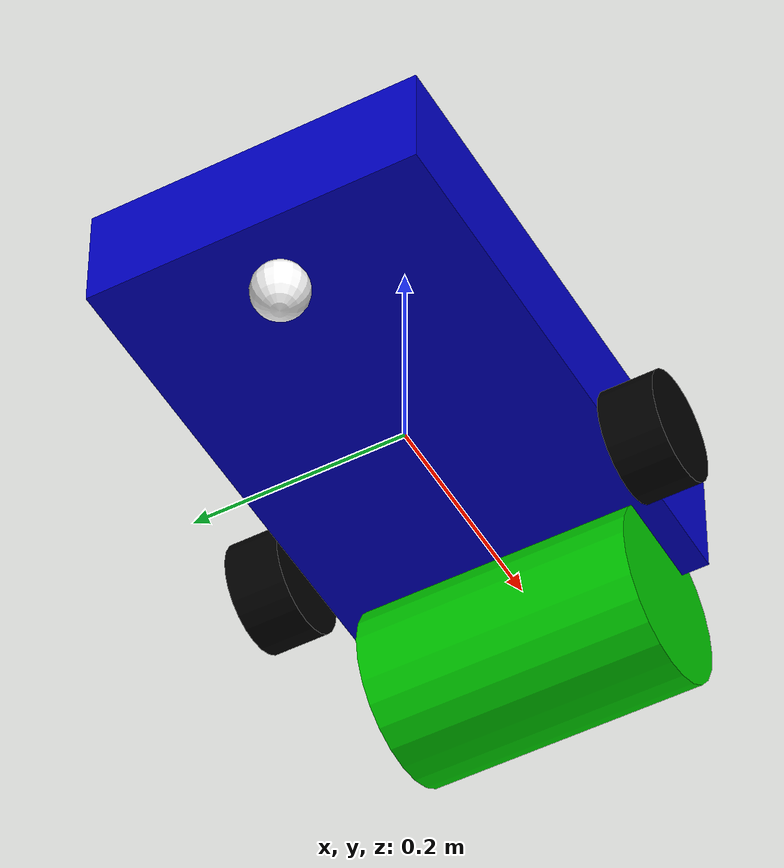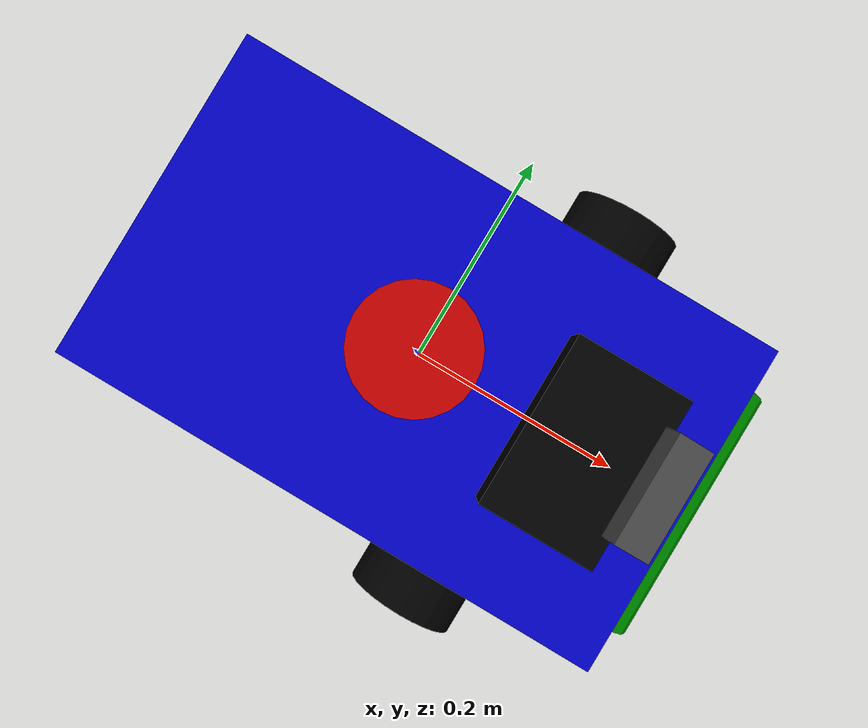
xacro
<?xml version="1.0"?>
<robot name="cleaning_robot" xmlns:xacro="http://www.ros.org/wiki/xacro">

  <!-- 定义一些常用的颜色 -->
  <material name="blue">
    <color rgba="0.0 0.0 0.8 1.0"/>
  </material>

  <material name="red">
    <color rgba="0.8 0.0 0.0 1.0"/>
  </material>

  <material name="green">
    <color rgba="0.0 0.8 0.0 1.0"/>
  </material>

  <material name="black">
    <color rgba="0.0 0.0 0.0 1.0"/>
  </material>

  <material name="white">
    <color rgba="1.0 1.0 1.0 1.0"/>
  </material>

  <!-- 底盘链接 -->
  <link name="base_link">
    <visual>
      <origin xyz="0 0 0.05" rpy="0 0 0"/>
      <geometry>
        <box size="0.5 0.3 0.1"/>
      </geometry>
      <material name="blue"/>
    </visual>
    <collision>
      <origin xyz="0 0 0.05" rpy="0 0 0"/>
      <geometry>
        <box size="0.5 0.3 0.1"/>
      </geometry>
    </collision>
    <inertial>
      <origin xyz="0 0 0.05" rpy="0 0 0"/>
      <mass value="10.0"/>
      <inertia ixx="1.0" ixy="0.0" ixz="0.0" iyy="1.0" iyz="0.0" izz="1.0"/>
    </inertial>
  </link>

  <!-- 左轮 -->
  <link name="left_wheel">
    <visual>
      <origin xyz="0 0 0" rpy="1.5708 0 0"/>
      <geometry>
        <cylinder radius="0.05" length="0.05"/>
      </geometry>
      <material name="black"/>
    </visual>
    <collision>
      <origin xyz="0 0 0" rpy="1.5708 0 0"/>
      <geometry>
        <cylinder radius="0.05" length="0.05"/>
      </geometry>
    </collision>
    <inertial>
      <origin xyz="0 0 0" rpy="1.5708 0 0"/>
      <mass value="1.0"/>
      <inertia ixx="0.1" ixy="0.0" ixz="0.0" iyy="0.1" iyz="0.0" izz="0.1"/>
    </inertial>
  </link>

  <joint name="left_wheel_joint" type="continuous">
    <parent link="base_link"/>
    <child link="left_wheel"/>
    <origin xyz="0.1 0.175 0" rpy="0 0 0"/>
    <axis xyz="0 1 0"/>
  </joint>

  <!-- 右轮 -->
  <link name="right_wheel">
    <visual>
      <origin xyz="0 0 0" rpy="1.5708 0 0"/>
      <geometry>
        <cylinder radius="0.05" length="0.05"/>
      </geometry>
      <material name="black"/>
    </visual>
    <collision>
      <origin xyz="0 0 0" rpy="1.5708 0 0"/>
      <geometry>
        <cylinder radius="0.05" length="0.05"/>
      </geometry>
    </collision>
    <inertial>
      <origin xyz="0 0 0" rpy="1.5708 0 0"/>
      <mass value="1.0"/>
      <inertia ixx="0.1" ixy="0.0" ixz="0.0" iyy="0.1" iyz="0.0" izz="0.1"/>
    </inertial>
  </link>

  <joint name="right_wheel_joint" type="continuous">
    <parent link="base_link"/>
    <child link="right_wheel"/>
    <origin xyz="0.1 -0.175 0" rpy="0 0 0"/>
    <axis xyz="0 1 0"/>
  </joint>

  <!-- 前支撑轮 -->
  <link name="front_caster">
    <visual>
      <origin xyz="0 0 0" rpy="0 0 0"/>
      <geometry>
        <sphere radius="0.025"/>
      </geometry>
      <material name="white"/>
    </visual>
    <collision>
      <origin xyz="0 0 0" rpy="0 0 0"/>
      <geometry>
        <sphere radius="0.025"/>
      </geometry>
    </collision>
    <inertial>
      <origin xyz="0 0 0" rpy="0 0 0"/>
      <mass value="0.5"/>
      <inertia ixx="0.05" ixy="0.0" ixz="0.0" iyy="0.05" iyz="0.0" izz="0.05"/>
    </inertial>
  </link>

  <joint name="front_caster_joint" type="fixed">
    <parent link="base_link"/>
    <child link="front_caster"/>
    <origin xyz="0.2 0 -0.025" rpy="0 0 0"/>
  </joint>

  <!-- 后支撑轮 -->
  <link name="rear_caster">
    <visual>
      <origin xyz="0 0 0" rpy="0 0 0"/>
      <geometry>
        <sphere radius="0.025"/>
      </geometry>
      <material name="white"/>
    </visual>
    <collision>
      <origin xyz="0 0 0" rpy="0 0 0"/>
      <geometry>
        <sphere radius="0.025"/>
      </geometry>
    </collision>
    <inertial>
      <origin xyz="0 0 0" rpy="0 0 0"/>
      <mass value="0.5"/>
      <inertia ixx="0.05" ixy="0.0" ixz="0.0" iyy="0.05" iyz="0.0" izz="0.05"/>
    </inertial>
  </link>

  <joint name="rear_caster_joint" type="fixed">
    <parent link="base_link"/>
    <child link="rear_caster"/>
    <origin xyz="-0.2 0 -0.025" rpy="0 0 0"/>
  </joint>

  <!-- 激光雷达 -->
  <link name="lidar_link">
    <visual>
      <origin xyz="0 0 0" rpy="0 0 0"/>
      <geometry>
        <cylinder radius="0.05" length="0.05"/>
      </geometry>
      <material name="red"/>
    </visual>
    <collision>
      <origin xyz="0 0 0" rpy="0 0 0"/>
      <geometry>
        <cylinder radius="0.05" length="0.05"/>
      </geometry>
    </collision>
    <inertial>
      <origin xyz="0 0 0" rpy="0 0 0"/>
      <mass value="0.5"/>
      <inertia ixx="0.05" ixy="0.0" ixz="0.0" iyy="0.05" iyz="0.0" izz="0.05"/>
    </inertial>
  </link>

  <joint name="lidar_joint" type="fixed">
    <parent link="base_link"/>
    <child link="lidar_link"/>
    <origin xyz="0 0 0.175" rpy="0 0 0"/>
  </joint>

  <!-- 双目摄像头基座 -->
  <link name="camera_base_link">
    <visual>
      <origin xyz="0 0 0" rpy="0 0 0"/>
      <geometry>
        <box size="0.1 0.15 0.05"/>
      </geometry>
      <material name="black"/>
    </visual>
    <collision>
      <origin xyz="0 0 0" rpy="0 0 0"/>
      <geometry>
        <box size="0.1 0.15 0.05"/>
      </geometry>
    </collision>
    <inertial>
      <origin xyz="0 0 0" rpy="0 0 0"/>
      <mass value="0.3"/>
      <inertia ixx="0.03" ixy="0.0" ixz="0.0" iyy="0.03" iyz="0.0" izz="0.03"/>
    </inertial>
  </link>

  <joint name="camera_base_joint" type="fixed">
    <parent link="base_link"/>
    <child link="camera_base_link"/>
    <origin xyz="0.15 0 0.125" rpy="0 0 0"/>
  </joint>

  <!-- 左摄像头 -->
  <link name="camera_left_link">
    <visual>
      <origin xyz="0 0 0" rpy="0 0 0"/>
      <geometry>
        <box size="0.02 0.02 0.02"/>
      </geometry>
      <material name="black"/>
    </visual>
    <collision>
      <origin xyz="0 0 0" rpy="0 0 0"/>
      <geometry>
        <box size="0.02 0.02 0.02"/>
      </geometry>
    </collision>
    <inertial>
      <origin xyz="0 0 0" rpy="0 0 0"/>
      <mass value="0.1"/>
      <inertia ixx="0.01" ixy="0.0" ixz="0.0" iyy="0.01" iyz="0.0" izz="0.01"/>
    </inertial>
  </link>

  <joint name="camera_left_joint" type="fixed">
    <parent link="camera_base_link"/>
    <child link="camera_left_link"/>
    <origin xyz="0.04 0.06 0" rpy="0 0 0"/>
  </joint>

  <!-- 右摄像头 -->
  <link name="camera_right_link">
    <visual>
      <origin xyz="0 0 0" rpy="0 0 0"/>
      <geometry>
        <box size="0.02 0.02 0.02"/>
      </geometry>
      <material name="black"/>
    </visual>
    <collision>
      <origin xyz="0 0 0" rpy="0 0 0"/>
      <geometry>
        <box size="0.02 0.02 0.02"/>
      </geometry>
    </collision>
    <inertial>
      <origin xyz="0 0 0" rpy="0 0 0"/>
      <mass value="0.1"/>
      <inertia ixx="0.01" ixy="0.0" ixz="0.0" iyy="0.01" iyz="0.0" izz="0.01"/>
    </inertial>
  </link>

  <joint name="camera_right_joint" type="fixed">
    <parent link="camera_base_link"/>
    <child link="camera_right_link"/>
    <origin xyz="0.04 -0.06 0" rpy="0 0 0"/>
  </joint>

  <!-- 清扫刷 -->
  <link name="cleaning_brush_link">
    <visual>
      <origin xyz="0 0 0" rpy="1.5708 0 0"/>
      <geometry>
        <cylinder radius="0.08" length="0.25"/>
      </geometry>
      <material name="green"/>
    </visual>
    <collision>
      <origin xyz="0 0 0" rpy="1.5708 0 0"/>
      <geometry>
        <cylinder radius="0.08" length="0.25"/>
      </geometry>
    </collision>
    <inertial>
      <origin xyz="0 0 0" rpy="1.5708 0 0"/>
      <mass value="0.5"/>
      <inertia ixx="0.05" ixy="0.0" ixz="0.0" iyy="0.05" iyz="0.0" izz="0.05"/>
    </inertial>
  </link>

  <joint name="cleaning_brush_joint" type="continuous">
    <parent link="base_link"/>
    <child link="cleaning_brush_link"/>
    <origin xyz="0.22 0 -0.05" rpy="0 0 0"/>
    <axis xyz="0 1 0"/>
  </joint>

  <!-- Gazebo插件 -->
  <gazebo>
    <plugin name="differential_drive_controller" filename="libgazebo_ros_diff_drive.so">
      <ros>
        <namespace>/cleaning_robot</namespace>
      </ros>

      <!-- 轮子参数 -->
      <left_joint>left_wheel_joint</left_joint>
      <right_joint>right_wheel_joint</right_joint>

      <!-- 运动学参数 -->
      <wheel_separation>0.35</wheel_separation>
      <wheel_diameter>0.1</wheel_diameter>

      <!-- 限制 -->
      <max_wheel_torque>20</max_wheel_torque>
      <max_wheel_acceleration>1.0</max_wheel_acceleration>

      <!-- 发布 -->
      <publish_odom>true</publish_odom>
      <publish_odom_tf>true</publish_odom_tf>
      <publish_wheel_tf>true</publish_wheel_tf>

      <odometry_frame>odom</odometry_frame>
      <robot_base_frame>base_link</robot_base_frame>
    </plugin>
  </gazebo>

  <!-- 激光雷达Gazebo插件 -->
  <gazebo reference="lidar_link">
    <sensor type="ray" name="lidar_sensor">
      <pose>0 0 0 0 0 0</pose>
      <visualize>true</visualize>
      <update_rate>10</update_rate>
      <ray>
        <scan>
          <horizontal>
            <samples>360</samples>
            <resolution>1</resolution>
            <min_angle>-3.14159</min_angle>
            <max_angle>3.14159</max_angle>
          </horizontal>
        </scan>
        <range>
          <min>0.1</min>
          <max>10.0</max>
          <resolution>0.01</resolution>
        </range>
        <noise>
          <type>gaussian</type>
          <mean>0.0</mean>
          <stddev>0.01</stddev>
        </noise>
      </ray>
      <plugin name="gazebo_ros_lidar" filename="libgazebo_ros_ray_sensor.so">
        <ros>
          <namespace>/cleaning_robot</namespace>
          <remapping>~/out:=scan</remapping>
        </ros>
        <output_type>sensor_msgs/LaserScan</output_type>
        <frame_name>lidar_link</frame_name>
      </plugin>
    </sensor>
  </gazebo>

  <!-- 左摄像头Gazebo插件 -->
  <gazebo reference="camera_left_link">
    <sensor type="camera" name="camera_left">
      <update_rate>30.0</update_rate>
      <camera name="head">
        <horizontal_fov>1.3962634</horizontal_fov>
        <image>
          <width>640</width>
          <height>480</height>
          <format>R8G8B8</format>
        </image>
        <clip>
          <near>0.02</near>
          <far>300</far>
        </clip>
        <noise>
          <type>gaussian</type>
          <mean>0.0</mean>
          <stddev>0.007</stddev>
        </noise>
      </camera>
      <plugin name="camera_controller_left" filename="libgazebo_ros_camera.so">
        <ros>
          <namespace>/cleaning_robot</namespace>
          <remapping>image_raw:=camera/left/image_raw</remapping>
          <remapping>camera_info:=camera/left/camera_info</remapping>
        </ros>
        <camera_name>camera_left</camera_name>
        <frame_name>camera_left_link</frame_name>
        <hack_baseline>0.12</hack_baseline>
      </plugin>
    </sensor>
  </gazebo>

  <!-- 右摄像头Gazebo插件 -->
  <gazebo reference="camera_right_link">
    <sensor type="camera" name="camera_right">
      <update_rate>30.0</update_rate>
      <camera name="head">
        <horizontal_fov>1.3962634</horizontal_fov>
        <image>
          <width>640</width>
          <height>480</height>
          <format>R8G8B8</format>
        </image>
        <clip>
          <near>0.02</near>
          <far>300</far>
        </clip>
        <noise>
          <type>gaussian</type>
          <mean>0.0</mean>
          <stddev>0.007</stddev>
        </noise>
      </camera>
      <plugin name="camera_controller_right" filename="libgazebo_ros_camera.so">
        <ros>
          <namespace>/cleaning_robot</namespace>
          <remapping>image_raw:=camera/right/image_raw</remapping>
          <remapping>camera_info:=camera/right/camera_info</remapping>
        </ros>
        <camera_name>camera_right</camera_name>
        <frame_name>camera_right_link</frame_name>
        <hack_baseline>0.12</hack_baseline>
      </plugin>
    </sensor>
  </gazebo>

  <!-- 奥比中光深度相机 -->
  <link name="orbbec_camera_link">
    <visual>
      <origin xyz="0 0 0" rpy="0 0 0"/>
      <geometry>
        <box size="0.03 0.09 0.025"/>
      </geometry>
      <material name="dark_grey">
        <color rgba="0.3 0.3 0.3 1.0"/>
      </material>
    </visual>
    <collision>
      <origin xyz="0 0 0" rpy="0 0 0"/>
      <geometry>
        <box size="0.03 0.09 0.025"/>
      </geometry>
    </collision>
    <inertial>
      <origin xyz="0 0 0" rpy="0 0 0"/>
      <mass value="0.15"/>
      <inertia ixx="0.01" ixy="0.0" ixz="0.0" iyy="0.01" iyz="0.0" izz="0.01"/>
    </inertial>
  </link>

  <joint name="orbbec_camera_joint" type="fixed">
    <parent link="base_link"/>
    <child link="orbbec_camera_link"/>
    <origin xyz="0.20 0 0.20" rpy="0 0.2 0"/>
  </joint>

  <!-- Orbbec深度相机Gazebo插件 -->
  <gazebo reference="orbbec_camera_link">
    <sensor type="depth" name="orbbec_depth_sensor">
      <update_rate>30.0</update_rate>
      <camera name="orbbec_camera">
        <horizontal_fov>1.047198</horizontal_fov>
        <image>
          <width>640</width>
          <height>480</height>
          <format>R8G8B8</format>
        </image>
        <clip>
          <near>0.05</near>
          <far>8.0</far>
        </clip>
        <noise>
          <type>gaussian</type>
          <mean>0.0</mean>
          <stddev>0.007</stddev>
        </noise>
      </camera>
      <plugin name="orbbec_depth_controller" filename="libgazebo_ros_depth_camera.so">
        <ros>
          <namespace>/cleaning_robot</namespace>
          <remapping>image_raw:=orbbec_camera/color/image_raw</remapping>
          <remapping>camera_info:=orbbec_camera/color/camera_info</remapping>
          <remapping>depth/image_raw:=orbbec_camera/depth/image_raw</remapping>
          <remapping>depth/camera_info:=orbbec_camera/depth/camera_info</remapping>
          <remapping>points:=orbbec_camera/pointcloud</remapping>
        </ros>
        <camera_name>orbbec_camera</camera_name>
        <frame_name>orbbec_camera_link</frame_name>
        <hack_baseline>0.0</hack_baseline>
        <min_depth>0.05</min_depth>
        <max_depth>8.0</max_depth>
      </plugin>
    </sensor>
  </gazebo>

</robot>
